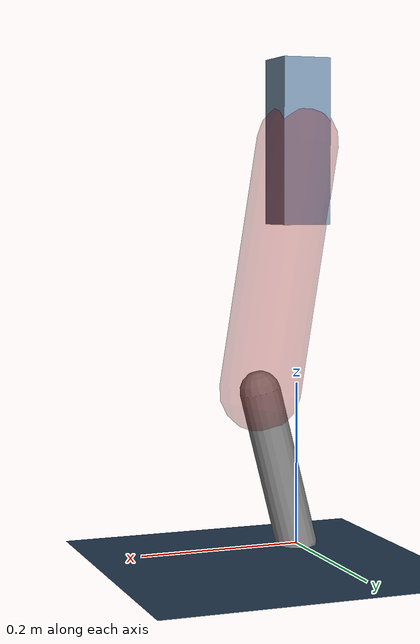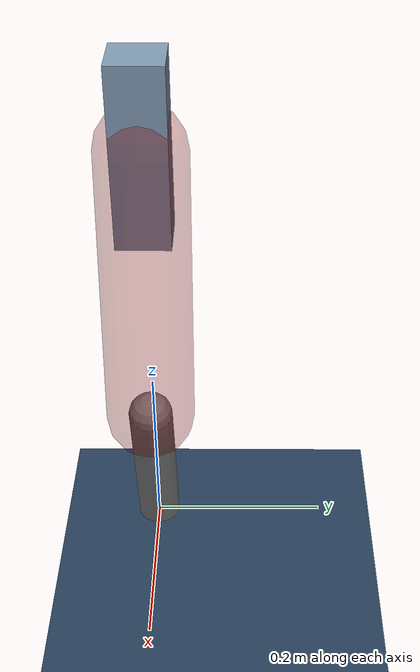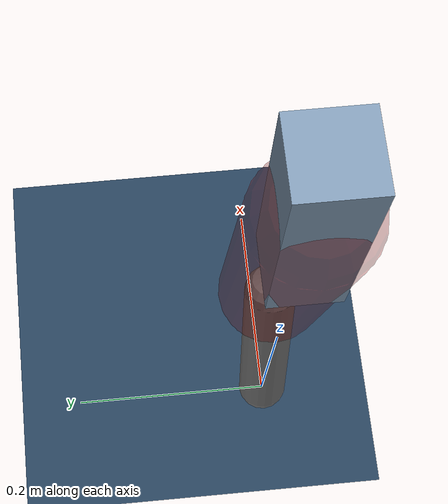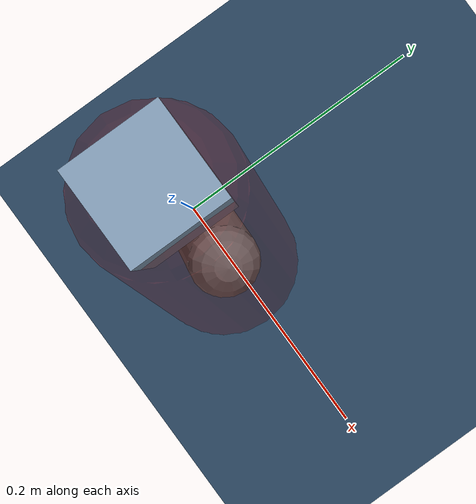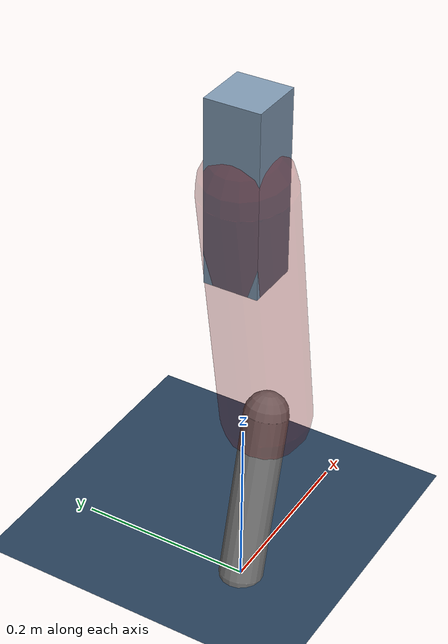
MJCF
<mujoco model="Hopper2D">
	<compiler inertiafromgeom="true" angle="radian" />
	<option timestep="0.001" integrator="implicit" cone="elliptic" solver="Newton" tolerance="1e-10" />

	<default>
		<geom contype="1" conaffinity="1" condim="3" friction="2 0.005 0.0001" solref="0.005 1" />
		<joint limited="true" damping="0.1" />
	</default>

	<asset>
		<texture name="skybox" type="skybox" builtin="gradient" rgb1=".4 .6 .8" rgb2="0 0 0" width="800" height="800" />
		<texture name="grid" type="2d" builtin="checker" rgb1=".1 .2 .3" rgb2=".2 .3 .4" width="300" height="300" mark="edge" markrgb=".2 .3 .4" />
		<material name="ground" texture="grid" texrepeat="1 1" texuniform="true" reflectance="0.1" />
		<material name="leg" rgba="0.5 0.6 0.7 1" />
	</asset>

	<worldbody>

		<geom name="floor" type="plane" size="5 5 0.25" material="ground" />

		<light directional="false" diffuse="0.8 0.8 0.8" specular="0.3 0.3 0.3" pos="0 0 2" dir="0 0 -1" />
		<light mode="targetbodycom" target="base" directional="false" diffuse="0.8 0.8 0.8" specular="0.3 0.3 0.3" pos="0 0 2" dir="0 0 -1" />

		<camera name="fixed" pos="0 -2 1" xyaxes="1 0 0 0 0 1" />
		<camera name="tracking" mode="trackcom" pos="0 -3 1" />

		<body name="root" pos="0 0 0.4946631268335413">
			<joint name="slide_x" type="slide" axis="1 0 0" range="-100 100" />
			<joint name="slide_z" type="slide" axis="0 0 1" range="0 10" />

			<body name="base" pos="0 0 0">
				<geom name="torso" type="box" size="0.03 0.03 0.1" mass="2.2939999999999996" material="leg" />

				<body name="link1" pos="0 0 0" euler="0 1.4109606102653476 0">
					<joint type="hinge" axis="0 -1 0" pos="0 0 0" name="hinge1" limited="true" range="-3.14 3.14" stiffness="0" damping="0.1" />
					<geom name="thigh" type="capsule" fromto="0 0 0 0.30644306559777224 0 0" size="0.05" rgba="0.5 0 0 0.3" mass="1.006196277113985" />

					<body name="link2" pos="0.30644306559777224 0 0" euler="0 0.40843966978889956 0">
						<joint type="hinge" axis="0 -1 0" pos="0 0 0" name="hinge2" limited="true" range="-3.14 3.14" stiffness="0" damping="0.1" />
						<geom name="shank" type="capsule" fromto="0 0 0 0.19822006123576913 0 0" size="0.025" mass="0.39939805511219223" />

					</body>
				</body>
			</body>
		</body>
	</worldbody>

	<actuator>
		<motor name="torque1" joint="hinge1" ctrlrange="-66.26088871496817 66.26088871496817" ctrllimited="true" gear="1" />
		<motor name="torque2" joint="hinge2" ctrlrange="-97.73153386204292 97.73153386204292" ctrllimited="true" gear="1" />
	</actuator>
</mujoco>
